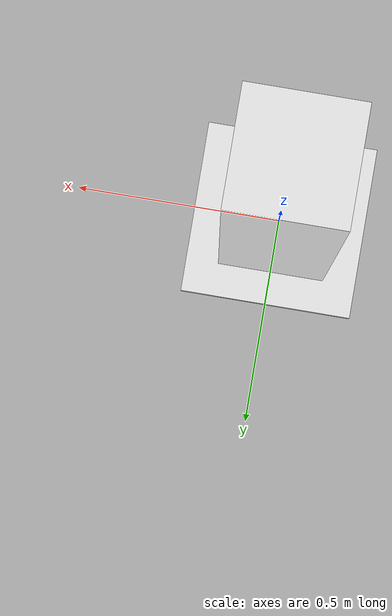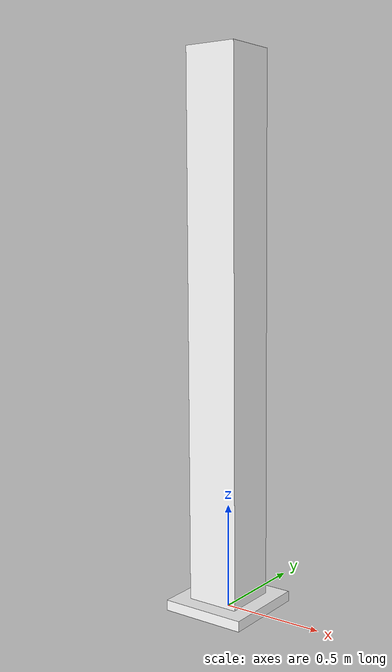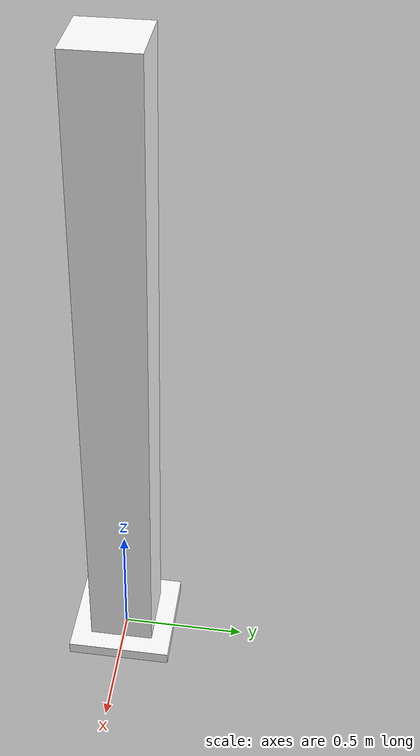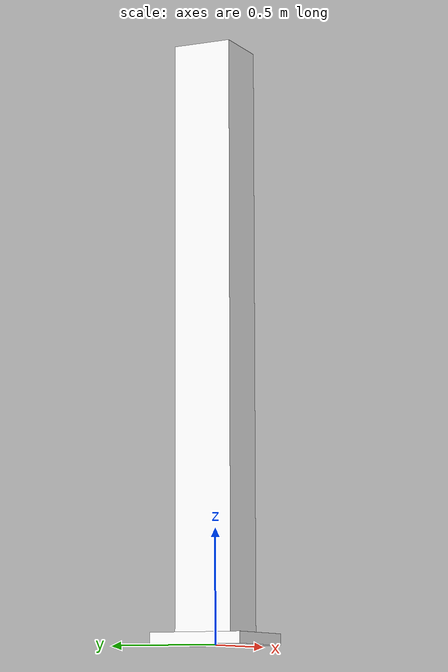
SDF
<?xml version="1.0"?>
<sdf version="1.10">
  <model name="pillar">
    <static>true</static>
      <link name="body">
        <collision name="plate_col"><pose>0 0 0.025 0 0 0</pose>
          <geometry><box><size>0.42 0.42 0.05</size></box></geometry></collision>
        <visual name="plate_vis"><pose>0 0 0.025 0 0 0</pose>
          <geometry><box><size>0.42 0.42 0.05</size></box></geometry>
          <material>
          <diffuse>1 1 1 1</diffuse>
          <specular>0.15 0.15 0.15 1</specular>
          <pbr><metal>
            <albedo_map>model://slam_assets/materials/textures/metal_panel.png</albedo_map>
            <roughness>0.85</roughness><metalness>0.0</metalness>
          </metal></pbr>
        </material>
        </visual>
        <collision name="shaft_col"><pose>0 0 1.32 0 0 0</pose>
          <geometry><box><size>0.26 0.26 2.6</size></box></geometry></collision>
        <visual name="shaft_vis"><pose>0 0 1.32 0 0 0</pose>
          <geometry><box><size>0.26 0.26 2.6</size></box></geometry>
          <material>
          <diffuse>1 1 1 1</diffuse>
          <specular>0.15 0.15 0.15 1</specular>
          <pbr><metal>
            <albedo_map>model://slam_assets/materials/textures/pillar_paint.png</albedo_map>
            <roughness>0.85</roughness><metalness>0.0</metalness>
          </metal></pbr>
        </material>
        </visual>
      </link>
  </model>
</sdf>
